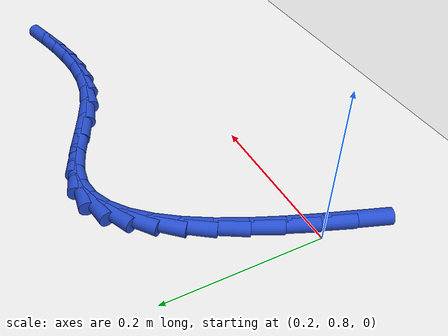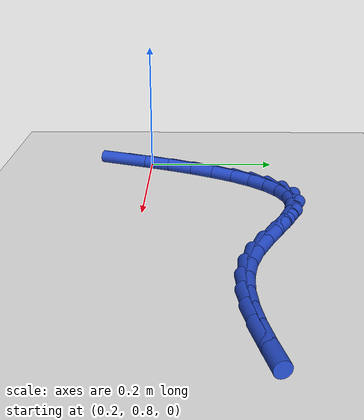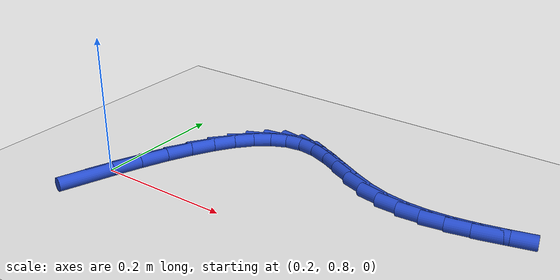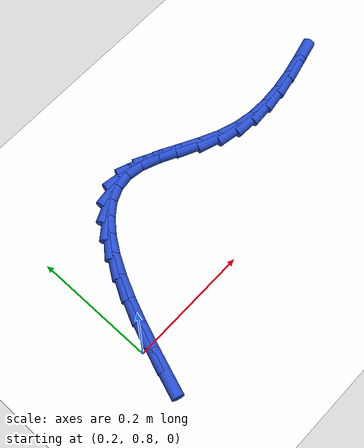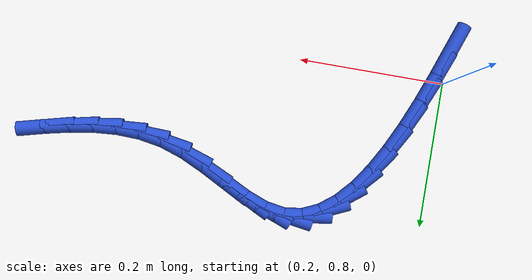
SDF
<sdf version="1.6">
 <world name="default">
  <model name="ground_plane">
   <static>1</static>
   <link name="link">
    <collision name="collision">
     <geometry><plane><normal>0 0 1</normal><size>100 100</size></plane></geometry>
     <surface><friction><ode><mu>100</mu><mu2>50</mu2></ode></friction></surface>
    </collision>
    <visual name="visual">
     <cast_shadows>0</cast_shadows>
     <geometry><plane><normal>0 0 1</normal><size>100 100</size></plane></geometry>
     <material>
      <script><uri>file://media/materials/scripts/gazebo.material</uri><name>Gazebo/WhiteGlow</name></script>
     </material>
    </visual>
   </link>
  </model>
  <model name="line">
   <link name="link_23">
    <pose>0.19915416839653147 0.7540500548720234 0.01 0 1.57 1.2291241233278682</pose>
    <collision name="collision">
     <geometry><cylinder><radius>0.01</radius><length>0.08</length></cylinder></geometry>
    </collision>
    <visual name="visual">
     <material>
      <script><name>Gazebo/Blue</name><uri>file://media/materials/scripts/gazebo.material</uri></script>
     </material>
     <geometry><cylinder><radius>0.01</radius><length>0.08</length></cylinder></geometry>
    </visual>
   </link>
   <link name="link_24">
    <pose>0.21325235990821334 0.7936940955354963 0.01 0 1.57 1.2048962785733868</pose>
    <collision name="collision">
     <geometry><cylinder><radius>0.01</radius><length>0.08</length></cylinder></geometry>
    </collision>
    <visual name="visual">
     <material>
      <script><name>Gazebo/Blue</name><uri>file://media/materials/scripts/gazebo.material</uri></script>
     </material>
     <geometry><cylinder><radius>0.01</radius><length>0.08</length></cylinder></geometry>
    </visual>
   </link>
   <link name="link_25">
    <pose>0.228060638111245 0.8323424788747815 0.01 0 1.57 1.169701695958854</pose>
    <collision name="collision">
     <geometry><cylinder><radius>0.01</radius><length>0.08</length></cylinder></geometry>
    </collision>
    <visual name="visual">
     <material>
      <script><name>Gazebo/Blue</name><uri>file://media/materials/scripts/gazebo.material</uri></script>
     </material>
     <geometry><cylinder><radius>0.01</radius><length>0.08</length></cylinder></geometry>
    </visual>
   </link>
   <link name="link_26">
    <pose>0.24370811890410699 0.8692395946954052 0.01 0 1.57 1.12071568485605</pose>
    <collision name="collision">
     <geometry><cylinder><radius>0.01</radius><length>0.08</length></cylinder></geometry>
    </collision>
    <visual name="visual">
     <material>
      <script><name>Gazebo/Blue</name><uri>file://media/materials/scripts/gazebo.material</uri></script>
     </material>
     <geometry><cylinder><radius>0.01</radius><length>0.08</length></cylinder></geometry>
    </visual>
   </link>
   <link name="link_27">
    <pose>0.26032391818528 0.9036298328028944 0.01 0 1.57 1.0534454320064823</pose>
    <collision name="collision">
     <geometry><cylinder><radius>0.01</radius><length>0.08</length></cylinder></geometry>
    </collision>
    <visual name="visual">
     <material>
      <script><name>Gazebo/Blue</name><uri>file://media/materials/scripts/gazebo.material</uri></script>
     </material>
     <geometry><cylinder><radius>0.01</radius><length>0.08</length></cylinder></geometry>
    </visual>
   </link>
   <link name="link_28">
    <pose>0.27803715185324474 0.9347575830027761 0.01 0 1.57 0.96098626019706</pose>
    <collision name="collision">
     <geometry><cylinder><radius>0.01</radius><length>0.08</length></cylinder></geometry>
    </collision>
    <visual name="visual">
     <material>
      <script><name>Gazebo/Blue</name><uri>file://media/materials/scripts/gazebo.material</uri></script>
     </material>
     <geometry><cylinder><radius>0.01</radius><length>0.08</length></cylinder></geometry>
    </visual>
   </link>
   <link name="link_29">
    <pose>0.2969769358064819 0.9618672351005776 0.01 0 1.57 0.8332253021852252</pose>
    <collision name="collision">
     <geometry><cylinder><radius>0.01</radius><length>0.08</length></cylinder></geometry>
    </collision>
    <visual name="visual">
     <material>
      <script><name>Gazebo/Blue</name><uri>file://media/materials/scripts/gazebo.material</uri></script>
     </material>
     <geometry><cylinder><radius>0.01</radius><length>0.08</length></cylinder></geometry>
    </visual>
   </link>
   <link name="link_30">
    <pose>0.3172723859434718 0.9842031789018248 0.01 0 1.57 0.6572111232838885</pose>
    <collision name="collision">
     <geometry><cylinder><radius>0.01</radius><length>0.08</length></cylinder></geometry>
    </collision>
    <visual name="visual">
     <material>
      <script><name>Gazebo/Blue</name><uri>file://media/materials/scripts/gazebo.material</uri></script>
     </material>
     <geometry><cylinder><radius>0.01</radius><length>0.08</length></cylinder></geometry>
    </visual>
   </link>
   <link name="link_31">
    <pose>0.33905261816269533 1.0010098042120454 0.01 0 1.57 0.4226526396820982</pose>
    <collision name="collision">
     <geometry><cylinder><radius>0.01</radius><length>0.08</length></cylinder></geometry>
    </collision>
    <visual name="visual">
     <material>
      <script><name>Gazebo/Blue</name><uri>file://media/materials/scripts/gazebo.material</uri></script>
     </material>
     <geometry><cylinder><radius>0.01</radius><length>0.08</length></cylinder></geometry>
    </visual>
   </link>
   <link name="link_32">
    <pose>0.36244674836263313 1.0115315008367658 0.01 0 1.57 0.13761133147089463</pose>
    <collision name="collision">
     <geometry><cylinder><radius>0.01</radius><length>0.08</length></cylinder></geometry>
    </collision>
    <visual name="visual">
     <material>
      <script><name>Gazebo/Blue</name><uri>file://media/materials/scripts/gazebo.material</uri></script>
     </material>
     <geometry><cylinder><radius>0.01</radius><length>0.08</length></cylinder></geometry>
    </visual>
   </link>
   <link name="link_33">
    <pose>0.3875838924417656 1.0150126585815133 0.01 0 1.57 -0.15613693400782325</pose>
    <collision name="collision">
     <geometry><cylinder><radius>0.01</radius><length>0.08</length></cylinder></geometry>
    </collision>
    <visual name="visual">
     <material>
      <script><name>Gazebo/Blue</name><uri>file://media/materials/scripts/gazebo.material</uri></script>
     </material>
     <geometry><cylinder><radius>0.01</radius><length>0.08</length></cylinder></geometry>
    </visual>
   </link>
   <link name="link_34">
    <pose>0.41458370208011375 1.0107623961370753 0.01 0 1.57 -0.36606578916136967</pose>
    <collision name="collision">
     <geometry><cylinder><radius>0.01</radius><length>0.08</length></cylinder></geometry>
    </collision>
    <visual name="visual">
     <material>
      <script><name>Gazebo/Blue</name><uri>file://media/materials/scripts/gazebo.material</uri></script>
     </material>
     <geometry><cylinder><radius>0.01</radius><length>0.08</length></cylinder></geometry>
    </visual>
   </link>
   <link name="link_35">
    <pose>0.443323814632774 0.9997450473116573 0.01 0 1.57 -0.46407062809870164</pose>
    <collision name="collision">
     <geometry><cylinder><radius>0.01</radius><length>0.08</length></cylinder></geometry>
    </collision>
    <visual name="visual">
     <material>
      <script><name>Gazebo/Blue</name><uri>file://media/materials/scripts/gazebo.material</uri></script>
     </material>
     <geometry><cylinder><radius>0.01</radius><length>0.08</length></cylinder></geometry>
    </visual>
   </link>
   <link name="link_36">
    <pose>0.47342550670559924 0.9846782809187054 0.01 0 1.57 -0.4834780515167525</pose>
    <collision name="collision">
     <geometry><cylinder><radius>0.01</radius><length>0.08</length></cylinder></geometry>
    </collision>
    <visual name="visual">
     <material>
      <script><name>Gazebo/Blue</name><uri>file://media/materials/scripts/gazebo.material</uri></script>
     </material>
     <geometry><cylinder><radius>0.01</radius><length>0.08</length></cylinder></geometry>
    </visual>
   </link>
   <link name="link_37">
    <pose>0.504497718417748 0.9683641390387474 0.01 0 1.57 -0.43633383077724097</pose>
    <collision name="collision">
     <geometry><cylinder><radius>0.01</radius><length>0.08</length></cylinder></geometry>
    </collision>
    <visual name="visual">
     <material>
      <script><name>Gazebo/Blue</name><uri>file://media/materials/scripts/gazebo.material</uri></script>
     </material>
     <geometry><cylinder><radius>0.01</radius><length>0.08</length></cylinder></geometry>
    </visual>
   </link>
   <link name="link_38">
    <pose>0.5361493898883783 0.9536046637523096 0.01 0 1.57 -0.3187283572391451</pose>
    <collision name="collision">
     <geometry><cylinder><radius>0.01</radius><length>0.08</length></cylinder></geometry>
    </collision>
    <visual name="visual">
     <material>
      <script><name>Gazebo/Blue</name><uri>file://media/materials/scripts/gazebo.material</uri></script>
     </material>
     <geometry><cylinder><radius>0.01</radius><length>0.08</length></cylinder></geometry>
    </visual>
   </link>
   <link name="link_39">
    <pose>0.5680024422446137 0.9430938347623454 0.01 0 1.57 -0.16856508030482098</pose>
    <collision name="collision">
     <geometry><cylinder><radius>0.01</radius><length>0.08</length></cylinder></geometry>
    </collision>
    <visual name="visual">
     <material>
      <script><name>Gazebo/Blue</name><uri>file://media/materials/scripts/gazebo.material</uri></script>
     </material>
     <geometry><cylinder><radius>0.01</radius><length>0.08</length></cylinder></geometry>
    </visual>
   </link>
   <link name="link_40">
    <pose>0.5999022909631823 0.9376651190244988 0.01 0 1.57 -0.03379384773260507</pose>
    <collision name="collision">
     <geometry><cylinder><radius>0.01</radius><length>0.08</length></cylinder></geometry>
    </collision>
    <visual name="visual">
     <material>
      <script><name>Gazebo/Blue</name><uri>file://media/materials/scripts/gazebo.material</uri></script>
     </material>
     <geometry><cylinder><radius>0.01</radius><length>0.08</length></cylinder></geometry>
    </visual>
   </link>
   <link name="link_41">
    <pose>0.6318827098355708 0.9365839660197505 0.01 0 1.57 0.07719156503482295</pose>
    <collision name="collision">
     <geometry><cylinder><radius>0.01</radius><length>0.08</length></cylinder></geometry>
    </collision>
    <visual name="visual">
     <material>
      <script><name>Gazebo/Blue</name><uri>file://media/materials/scripts/gazebo.material</uri></script>
     </material>
     <geometry><cylinder><radius>0.01</radius><length>0.08</length></cylinder></geometry>
    </visual>
   </link>
   <link name="link_42">
    <pose>0.6639833619470645 0.9390667989060257 0.01 0 1.57 0.16172310763942283</pose>
    <collision name="collision">
     <geometry><cylinder><radius>0.01</radius><length>0.08</length></cylinder></geometry>
    </collision>
    <visual name="visual">
     <material>
      <script><name>Gazebo/Blue</name><uri>file://media/materials/scripts/gazebo.material</uri></script>
     </material>
     <geometry><cylinder><radius>0.01</radius><length>0.08</length></cylinder></geometry>
    </visual>
   </link>
   <link name="link_43">
    <pose>0.6962439103829482 0.9443300408412509 0.01 0 1.57 0.2200400076044063</pose>
    <collision name="collision">
     <geometry><cylinder><radius>0.01</radius><length>0.08</length></cylinder></geometry>
    </collision>
    <visual name="visual">
     <material>
      <script><name>Gazebo/Blue</name><uri>file://media/materials/scripts/gazebo.material</uri></script>
     </material>
     <geometry><cylinder><radius>0.01</radius><length>0.08</length></cylinder></geometry>
    </visual>
   </link>
   <link name="link_44">
    <pose>0.7287040182285066 0.9515901149833521 0.01 0 1.57 0.25355159955457574</pose>
    <collision name="collision">
     <geometry><cylinder><radius>0.01</radius><length>0.08</length></cylinder></geometry>
    </collision>
    <visual name="visual">
     <material>
      <script><name>Gazebo/Blue</name><uri>file://media/materials/scripts/gazebo.material</uri></script>
     </material>
     <geometry><cylinder><radius>0.01</radius><length>0.08</length></cylinder></geometry>
    </visual>
   </link>
  </model>
 </world>
</sdf>
